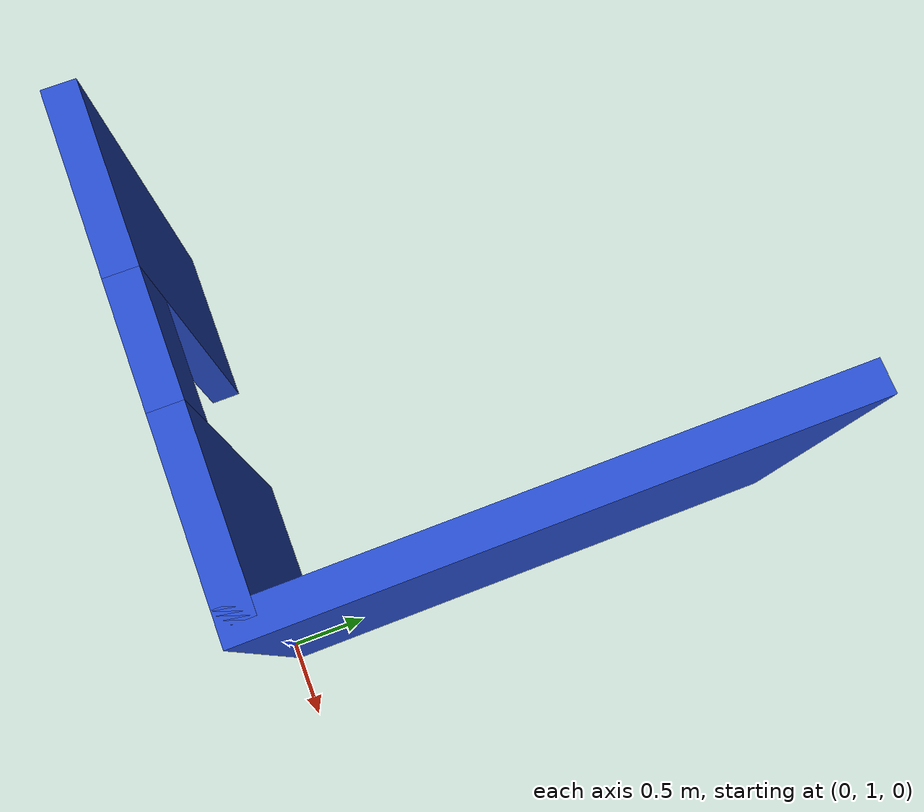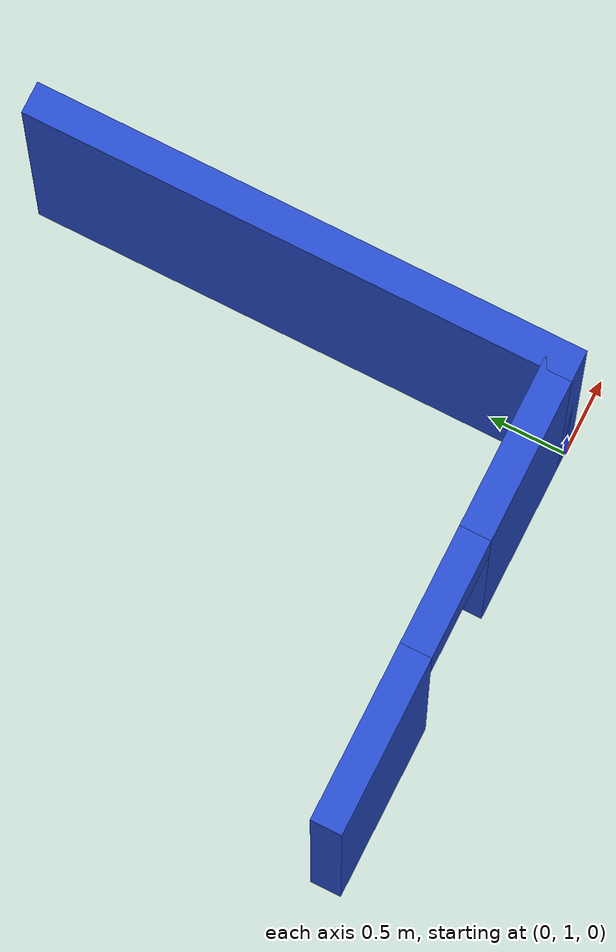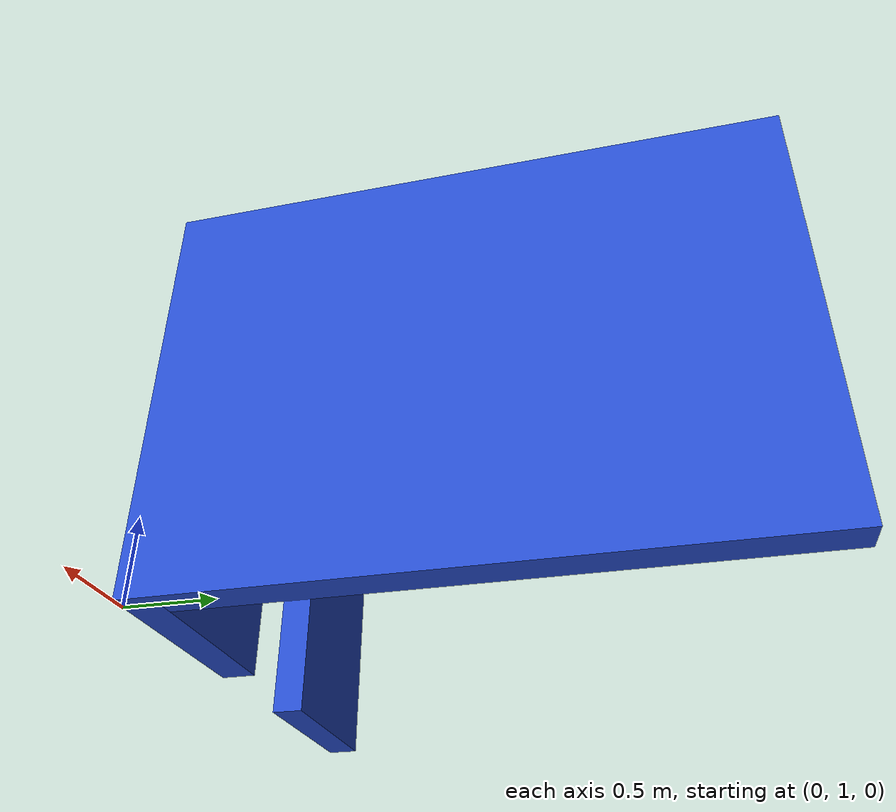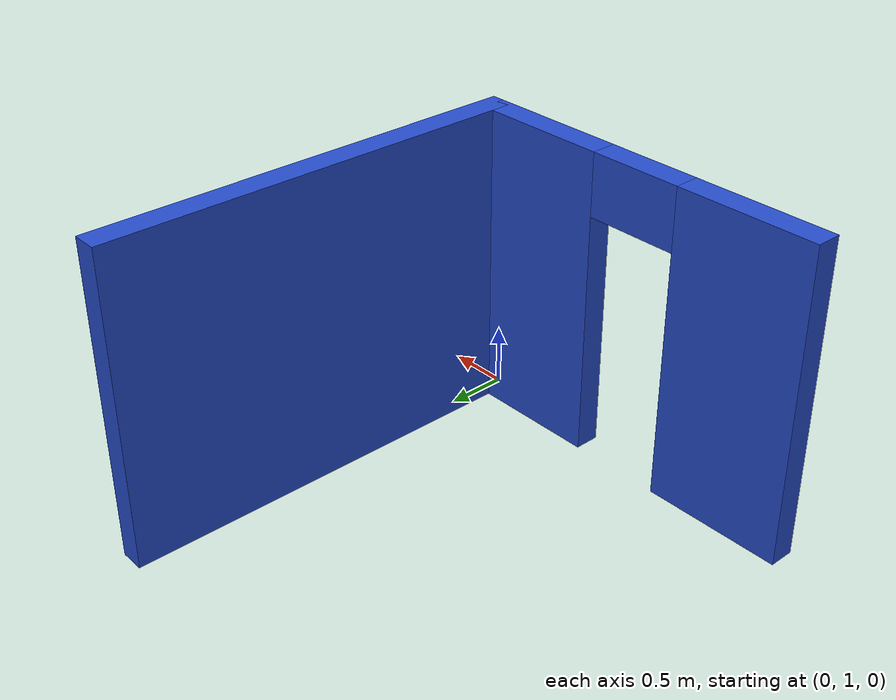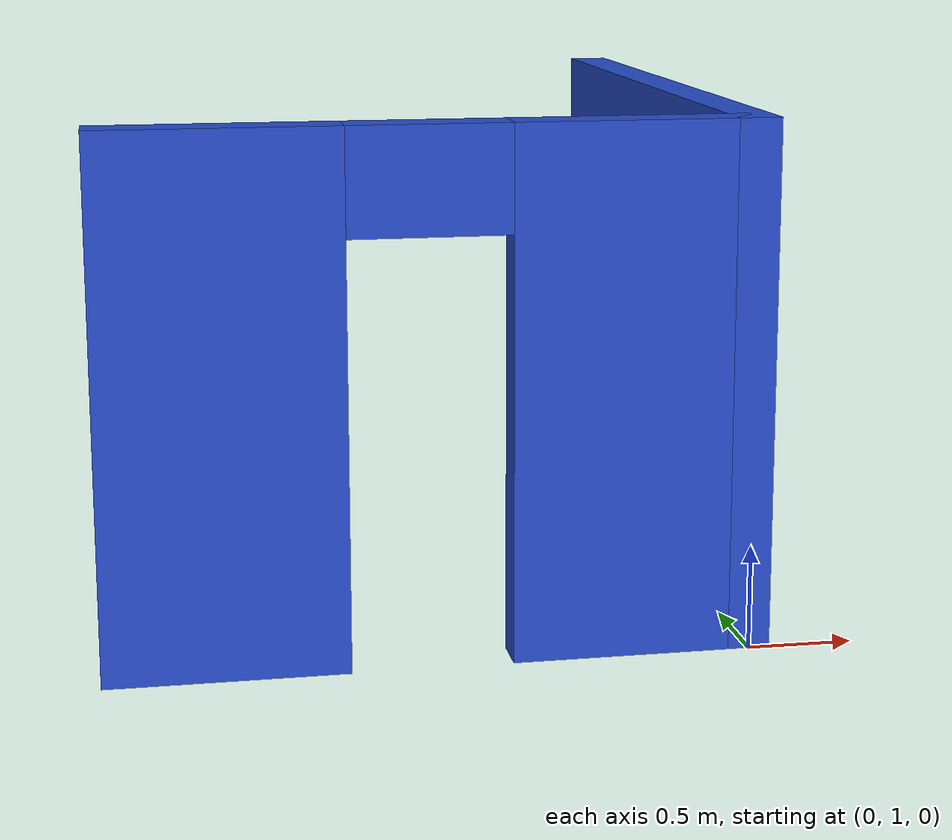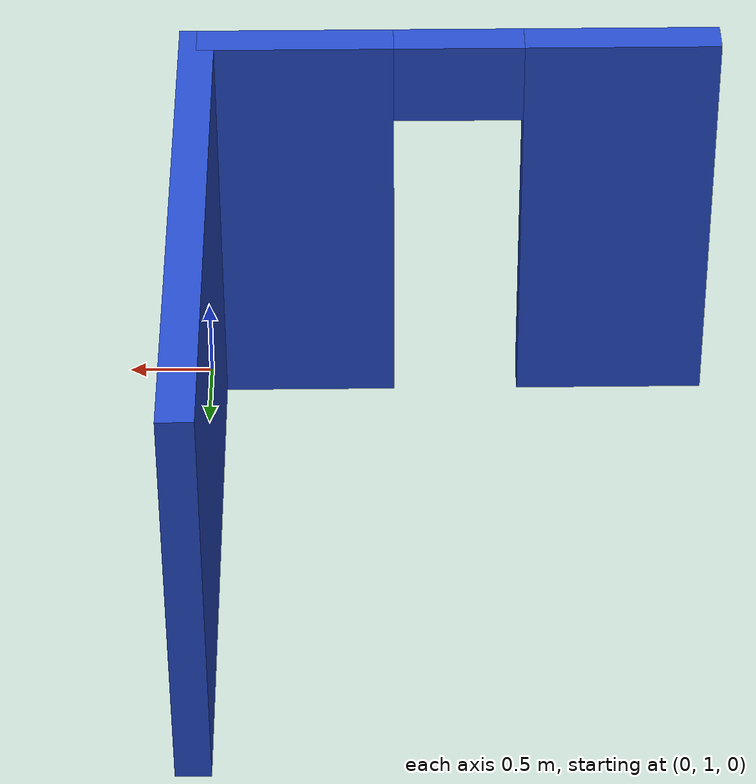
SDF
<?xml version='1.0'?>
<sdf version='1.4'>
  <model name='bedroom'>
    <link name='Wall_South'>
      <pose>-1.5 1.1 0 0 0 0</pose>
      <visual name='Wall_South_Visual_0'>
        <pose>-0.9375 0 1.25 0 -0 0</pose>
        <geometry>
          <box>
            <size>1.125 0.2 2.5</size>
          </box>
        </geometry>
        <material>
          <script>
            <uri>file://media/materials/scripts/gazebo.material</uri>
            <name>Gazebo/Blue</name>
          </script>
        </material>
      </visual>
      <collision name='Wall_South_Collision_0'>
        <geometry>
          <box>
            <size>1.125 0.2 2.5</size>
          </box>
        </geometry>
        <pose>-0.9375 0 1.25 0 -0 0</pose>
      </collision>
      <visual name='Wall_South_Visual_1'>
        <pose>0.9375 0 1.25 0 -0 0</pose>
        <geometry>
          <box>
            <size>1.125 0.2 2.5</size>
          </box>
        </geometry>
        <material>
          <script>
            <uri>file://media/materials/scripts/gazebo.material</uri>
            <name>Gazebo/Blue</name>
          </script>
        </material>
      </visual>
      <collision name='Wall_South_Collision_1'>
        <geometry>
          <box>
            <size>1.125 0.2 2.5</size>
          </box>
        </geometry>
        <pose>0.9375 0 1.25 0 -0 0</pose>
      </collision>
      <visual name='Wall_South_Visual_2'>
        <pose>0 0 2.25 0 -0 0</pose>
        <geometry>
          <box>
            <size>0.75 0.2 0.5</size>
          </box>
        </geometry>
        <material>
          <script>
            <uri>file://media/materials/scripts/gazebo.material</uri>
            <name>Gazebo/Blue</name>
          </script>
        </material>
      </visual>
      <collision name='Wall_South_Collision_2'>
        <geometry>
          <box>
            <size>0.75 0.2 0.5</size>
          </box>
        </geometry>
        <pose>0 0 2.25 0 -0 0</pose>
      </collision>
    </link>
    <link name='Wall_East'>
      <collision name='Wall_East_Collision'>
        <geometry>
          <box>
            <size>3.5 0.2 2.5</size>
          </box>
        </geometry>
        <pose>0 0 1.25 0 -0 0</pose>
      </collision>
      <visual name='Wall_East_Visual'>
        <pose>0 0 1.25 0 -0 0</pose>
        <geometry>
          <box>
            <size>3.5 0.2 2.5</size>
          </box>
        </geometry>
        <material>
          <script>
            <uri>file://media/materials/scripts/gazebo.material</uri>
            <name>Gazebo/Blue</name>
          </script>
        </material>
      </visual>
      <velocity_decay>
        <linear>0</linear>
        <angular>0</angular>
      </velocity_decay>
      <pose>0 2.75 0 0 0 1.5708</pose>
    </link>
    <static>1</static>
  </model>
</sdf>
